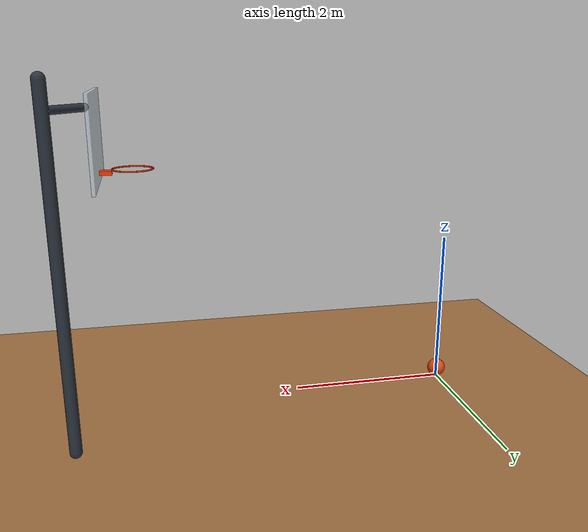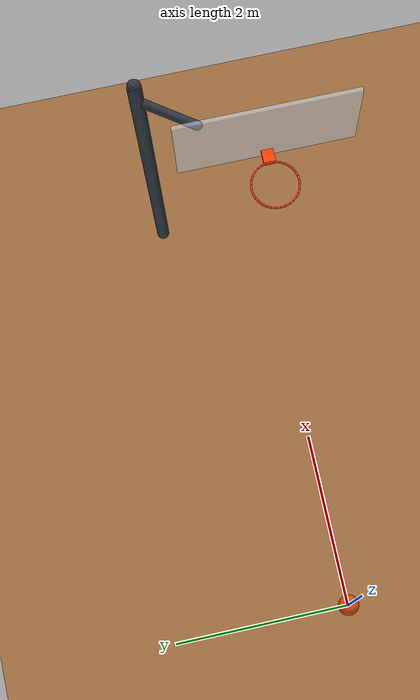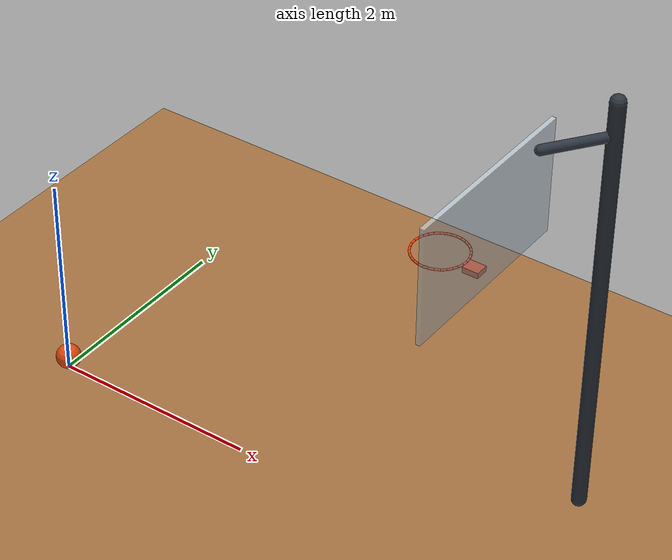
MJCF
<mujoco model="basketball_shot">
  <compiler angle="radian"/>
  <option timestep="0.002" gravity="0 0 -9.81" integrator="implicitfast"/>
  <visual>
    <global offwidth="1280" offheight="720"/>
  </visual>

  <worldbody>
    <light name="court_light" pos="2 -3 8" dir="0.1 0.3 -1" diffuse="0.9 0.9 0.9"/>
    <camera name="overview" pos="2 -11 6" xyaxes="1 0 0 0 0.32 0.9474"/>

    <geom name="floor" type="plane" pos="0 0 0" size="10 8 0.1" rgba="0.62 0.43 0.25 1" condim="6" friction="1.0 0.02 0.02" solref="0.012 1"/>

    <!-- Size-7 basketball: 0.754 m circumference and 0.624 kg mass. -->
    <body name="ball" pos="0 0 0.12">
      <freejoint name="ball_free"/>
      <geom name="ball" type="sphere" size="0.12" mass="0.624" rgba="0.88 0.29 0.045 1" condim="6" friction="1.0 0.02 0.02" solref="0.012 1"/>
    </body>

    <!-- Rim center is 4 m from launch and 3.05 m above the floor.
         Centerline radius 0.2381 minus tube radius 0.0095 gives
         the regulation 0.2286 m opening radius. -->
    <body name="hoop" pos="4 0 3.05">
      <geom name="rim_00" type="capsule" fromto="0.238100 0 0 0.233525 0.046451 0" size="0.0095" rgba="1 0.24 0.035 1"/>
      <geom name="rim_01" type="capsule" fromto="0.233525 0.046451 0 0.219976 0.091117 0" size="0.0095" rgba="1 0.24 0.035 1"/>
      <geom name="rim_02" type="capsule" fromto="0.219976 0.091117 0 0.197973 0.132281 0" size="0.0095" rgba="1 0.24 0.035 1"/>
      <geom name="rim_03" type="capsule" fromto="0.197973 0.132281 0 0.168362 0.168362 0" size="0.0095" rgba="1 0.24 0.035 1"/>
      <geom name="rim_04" type="capsule" fromto="0.168362 0.168362 0 0.132281 0.197973 0" size="0.0095" rgba="1 0.24 0.035 1"/>
      <geom name="rim_05" type="capsule" fromto="0.132281 0.197973 0 0.091117 0.219976 0" size="0.0095" rgba="1 0.24 0.035 1"/>
      <geom name="rim_06" type="capsule" fromto="0.091117 0.219976 0 0.046451 0.233525 0" size="0.0095" rgba="1 0.24 0.035 1"/>
      <geom name="rim_07" type="capsule" fromto="0.046451 0.233525 0 0 0.238100 0" size="0.0095" rgba="1 0.24 0.035 1"/>
      <geom name="rim_08" type="capsule" fromto="0 0.238100 0 -0.046451 0.233525 0" size="0.0095" rgba="1 0.24 0.035 1"/>
      <geom name="rim_09" type="capsule" fromto="-0.046451 0.233525 0 -0.091117 0.219976 0" size="0.0095" rgba="1 0.24 0.035 1"/>
      <geom name="rim_10" type="capsule" fromto="-0.091117 0.219976 0 -0.132281 0.197973 0" size="0.0095" rgba="1 0.24 0.035 1"/>
      <geom name="rim_11" type="capsule" fromto="-0.132281 0.197973 0 -0.168362 0.168362 0" size="0.0095" rgba="1 0.24 0.035 1"/>
      <geom name="rim_12" type="capsule" fromto="-0.168362 0.168362 0 -0.197973 0.132281 0" size="0.0095" rgba="1 0.24 0.035 1"/>
      <geom name="rim_13" type="capsule" fromto="-0.197973 0.132281 0 -0.219976 0.091117 0" size="0.0095" rgba="1 0.24 0.035 1"/>
      <geom name="rim_14" type="capsule" fromto="-0.219976 0.091117 0 -0.233525 0.046451 0" size="0.0095" rgba="1 0.24 0.035 1"/>
      <geom name="rim_15" type="capsule" fromto="-0.233525 0.046451 0 -0.238100 0 0" size="0.0095" rgba="1 0.24 0.035 1"/>
      <geom name="rim_16" type="capsule" fromto="-0.238100 0 0 -0.233525 -0.046451 0" size="0.0095" rgba="1 0.24 0.035 1"/>
      <geom name="rim_17" type="capsule" fromto="-0.233525 -0.046451 0 -0.219976 -0.091117 0" size="0.0095" rgba="1 0.24 0.035 1"/>
      <geom name="rim_18" type="capsule" fromto="-0.219976 -0.091117 0 -0.197973 -0.132281 0" size="0.0095" rgba="1 0.24 0.035 1"/>
      <geom name="rim_19" type="capsule" fromto="-0.197973 -0.132281 0 -0.168362 -0.168362 0" size="0.0095" rgba="1 0.24 0.035 1"/>
      <geom name="rim_20" type="capsule" fromto="-0.168362 -0.168362 0 -0.132281 -0.197973 0" size="0.0095" rgba="1 0.24 0.035 1"/>
      <geom name="rim_21" type="capsule" fromto="-0.132281 -0.197973 0 -0.091117 -0.219976 0" size="0.0095" rgba="1 0.24 0.035 1"/>
      <geom name="rim_22" type="capsule" fromto="-0.091117 -0.219976 0 -0.046451 -0.233525 0" size="0.0095" rgba="1 0.24 0.035 1"/>
      <geom name="rim_23" type="capsule" fromto="-0.046451 -0.233525 0 0 -0.238100 0" size="0.0095" rgba="1 0.24 0.035 1"/>
      <geom name="rim_24" type="capsule" fromto="0 -0.238100 0 0.046451 -0.233525 0" size="0.0095" rgba="1 0.24 0.035 1"/>
      <geom name="rim_25" type="capsule" fromto="0.046451 -0.233525 0 0.091117 -0.219976 0" size="0.0095" rgba="1 0.24 0.035 1"/>
      <geom name="rim_26" type="capsule" fromto="0.091117 -0.219976 0 0.132281 -0.197973 0" size="0.0095" rgba="1 0.24 0.035 1"/>
      <geom name="rim_27" type="capsule" fromto="0.132281 -0.197973 0 0.168362 -0.168362 0" size="0.0095" rgba="1 0.24 0.035 1"/>
      <geom name="rim_28" type="capsule" fromto="0.168362 -0.168362 0 0.197973 -0.132281 0" size="0.0095" rgba="1 0.24 0.035 1"/>
      <geom name="rim_29" type="capsule" fromto="0.197973 -0.132281 0 0.219976 -0.091117 0" size="0.0095" rgba="1 0.24 0.035 1"/>
      <geom name="rim_30" type="capsule" fromto="0.219976 -0.091117 0 0.233525 -0.046451 0" size="0.0095" rgba="1 0.24 0.035 1"/>
      <geom name="rim_31" type="capsule" fromto="0.233525 -0.046451 0 0.238100 0 0" size="0.0095" rgba="1 0.24 0.035 1"/>

      <geom name="backboard" type="box" pos="0.401 0 0.375" size="0.02 0.9 0.525" rgba="0.82 0.9 0.96 0.55"/>
      <geom name="rim_mount" type="box" pos="0.3095 0 -0.035" size="0.0715 0.06 0.025" rgba="1 0.24 0.035 1"/>
    </body>

    <body name="support" pos="4.8 1.15 0">
      <geom name="support_post" type="capsule" fromto="0 0 0.07 0 0 4.1" size="0.07" rgba="0.18 0.21 0.25 1"/>
      <geom name="support_arm" type="capsule" fromto="0 0 3.8 -0.359 -0.5 3.8" size="0.045" rgba="0.18 0.21 0.25 1"/>
    </body>
  </worldbody>

  <keyframe>
    <key name="start" time="0" qpos="0 0 0.12 1 0 0 0" qvel="2.666666667 0 9.320643333 0 0 0"/>
  </keyframe>
</mujoco>
